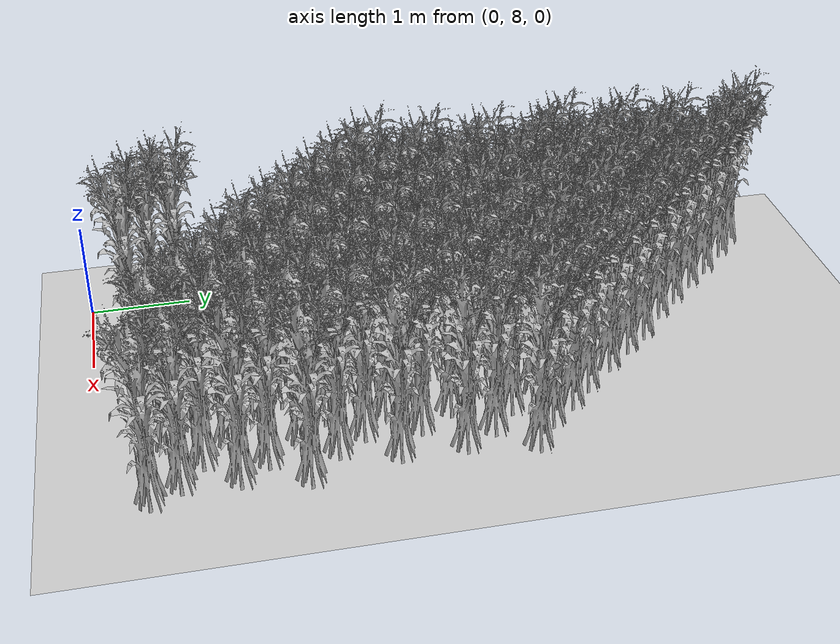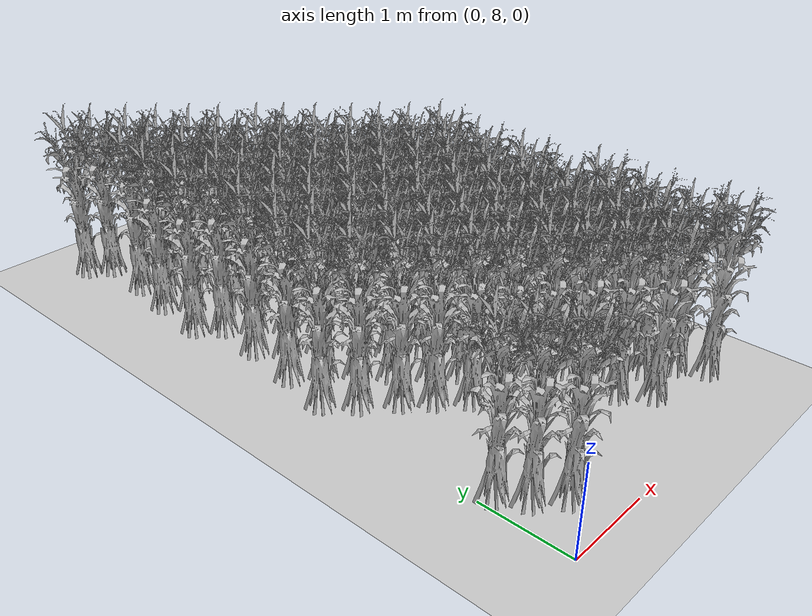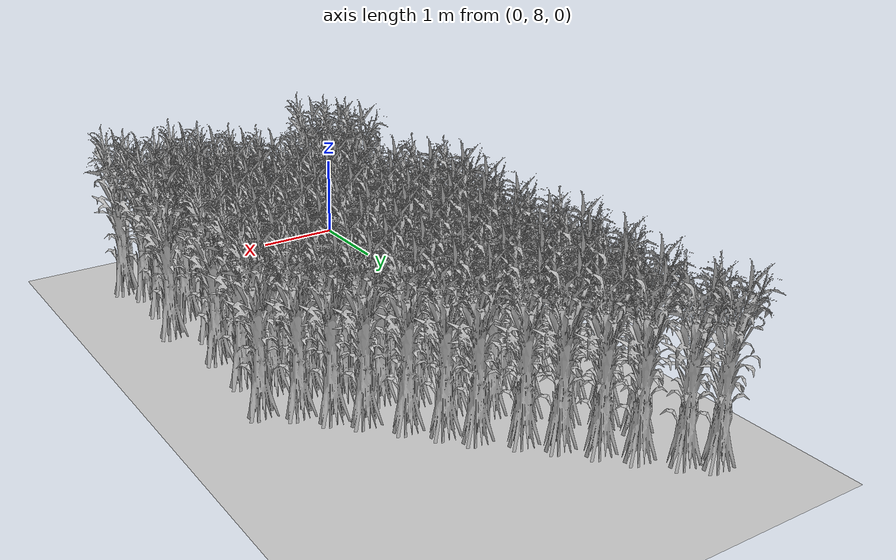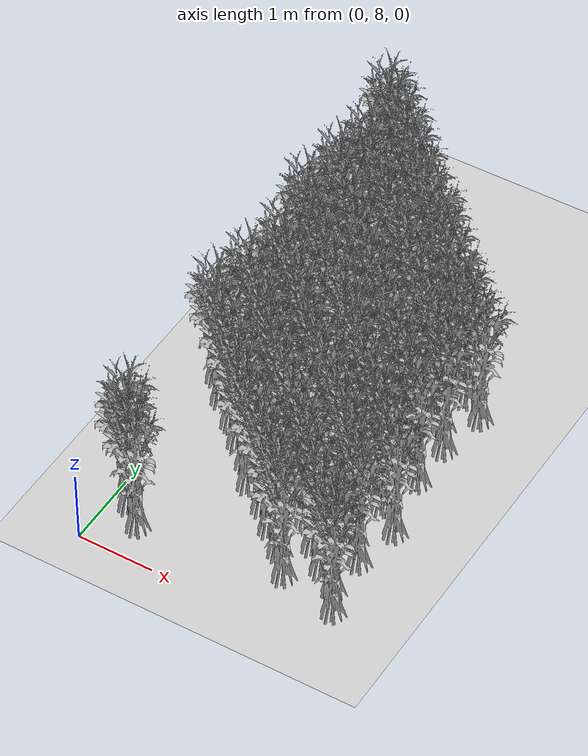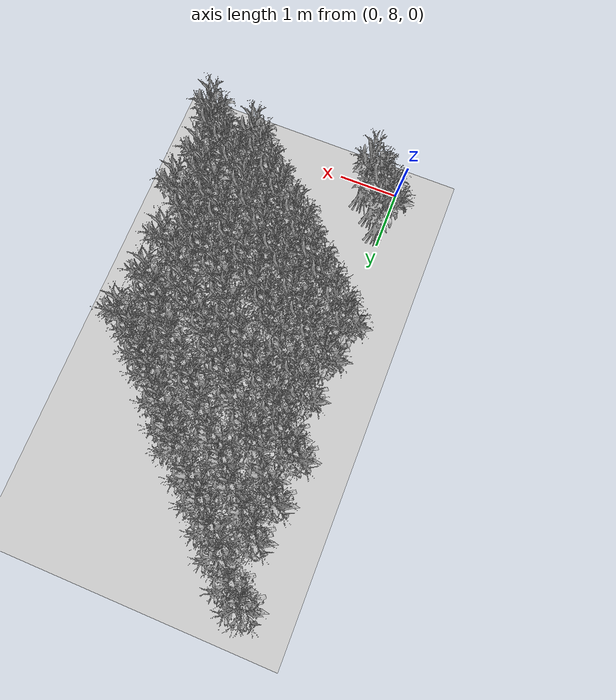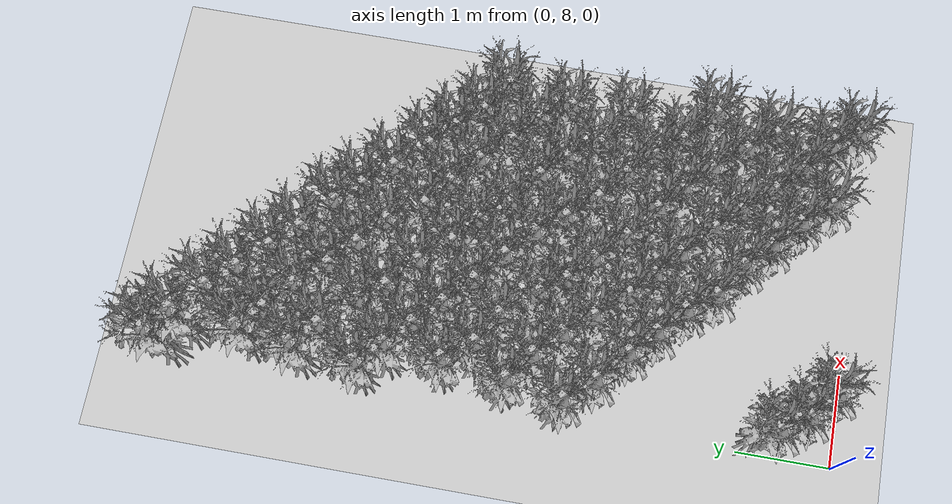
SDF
<sdf version="1.7">
 <world name="farmland_world">
  <model name="ground_plane">
   <static>1</static>
   <link name="link">
    <collision name="collision">
     <geometry><plane><normal>0 0 1</normal><size>40.0 40.0</size></plane></geometry>
     <surface><friction><ode><mu>100</mu><mu2>50</mu2></ode></friction></surface>
    </collision>
    <visual name="visual">
     <cast_shadows>0</cast_shadows>
     <geometry><plane><normal>0 0 1</normal><size>40.0 40.0</size></plane></geometry>
     <material>
      <script><uri>file://media/materials/scripts/gazebo.material</uri><name>Gazebo/Grey</name></script>
     </material>
    </visual>
   </link>
  </model>
  <model name="tree_2_105">
   <static>1</static>
   <link name="link">
    <collision name="collision">
     <geometry><mesh><uri>model://Corn/corn_5p.obj</uri><scale>1 1 1</scale></mesh></geometry>
     <surface><friction><ode><mu>100</mu><mu2>50</mu2></ode></friction></surface>
    </collision>
    <visual name="visual">
     <geometry><mesh><uri>model://Corn/corn_5p.obj</uri><scale>1 1 1</scale></mesh></geometry>
    </visual>
   </link>
   <pose>0.5451306004392127 8.413155913734837 0 0 0 0</pose>
  </model>
  <model name="tree_2_106">
   <static>1</static>
   <link name="link">
    <collision name="collision">
     <geometry><mesh><uri>model://Corn/corn_5p.obj</uri><scale>1 1 1</scale></mesh></geometry>
     <surface><friction><ode><mu>100</mu><mu2>50</mu2></ode></friction></surface>
    </collision>
    <visual name="visual">
     <geometry><mesh><uri>model://Corn/corn_5p.obj</uri><scale>1 1 1</scale></mesh></geometry>
    </visual>
   </link>
   <pose>0.2866304503400925 8.643393283350925 0 0 0 0</pose>
  </model>
  <model name="tree_2_107">
   <static>1</static>
   <link name="link">
    <collision name="collision">
     <geometry><mesh><uri>model://Corn/corn_5p.obj</uri><scale>1 1 1</scale></mesh></geometry>
     <surface><friction><ode><mu>100</mu><mu2>50</mu2></ode></friction></surface>
    </collision>
    <visual name="visual">
     <geometry><mesh><uri>model://Corn/corn_5p.obj</uri><scale>1 1 1</scale></mesh></geometry>
    </visual>
   </link>
   <pose>0.11748965823970725 8.903475811496973 0 0 0 0</pose>
  </model>
  <model name="tree_2_142">
   <static>1</static>
   <link name="link">
    <collision name="collision">
     <geometry><mesh><uri>model://Corn/corn_5p.obj</uri><scale>1 1 1</scale></mesh></geometry>
     <surface><friction><ode><mu>100</mu><mu2>50</mu2></ode></friction></surface>
    </collision>
    <visual name="visual">
     <geometry><mesh><uri>model://Corn/corn_5p.obj</uri><scale>1 1 1</scale></mesh></geometry>
    </visual>
   </link>
   <pose>2.3893309612489753 8.645324676497914 0 0 0 0</pose>
  </model>
  <model name="tree_2_143">
   <static>1</static>
   <link name="link">
    <collision name="collision">
     <geometry><mesh><uri>model://Corn/corn_5p.obj</uri><scale>1 1 1</scale></mesh></geometry>
     <surface><friction><ode><mu>100</mu><mu2>50</mu2></ode></friction></surface>
    </collision>
    <visual name="visual">
     <geometry><mesh><uri>model://Corn/corn_5p.obj</uri><scale>1 1 1</scale></mesh></geometry>
    </visual>
   </link>
   <pose>2.1480862070693543 8.933381988910929 0 0 0 0</pose>
  </model>
  <model name="tree_2_144">
   <static>1</static>
   <link name="link">
    <collision name="collision">
     <geometry><mesh><uri>model://Corn/corn_5p.obj</uri><scale>1 1 1</scale></mesh></geometry>
     <surface><friction><ode><mu>100</mu><mu2>50</mu2></ode></friction></surface>
    </collision>
    <visual name="visual">
     <geometry><mesh><uri>model://Corn/corn_5p.obj</uri><scale>1 1 1</scale></mesh></geometry>
    </visual>
   </link>
   <pose>1.86873004026248 9.18402238219949 0 0 0 0</pose>
  </model>
  <model name="tree_2_145">
   <static>1</static>
   <link name="link">
    <collision name="collision">
     <geometry><mesh><uri>model://Corn/corn_5p.obj</uri><scale>1 1 1</scale></mesh></geometry>
     <surface><friction><ode><mu>100</mu><mu2>50</mu2></ode></friction></surface>
    </collision>
    <visual name="visual">
     <geometry><mesh><uri>model://Corn/corn_5p.obj</uri><scale>1 1 1</scale></mesh></geometry>
    </visual>
   </link>
   <pose>1.6250427266683667 9.421250622798304 0 0 0 0</pose>
  </model>
  <model name="tree_2_146">
   <static>1</static>
   <link name="link">
    <collision name="collision">
     <geometry><mesh><uri>model://Corn/corn_5p.obj</uri><scale>1 1 1</scale></mesh></geometry>
     <surface><friction><ode><mu>100</mu><mu2>50</mu2></ode></friction></surface>
    </collision>
    <visual name="visual">
     <geometry><mesh><uri>model://Corn/corn_5p.obj</uri><scale>1 1 1</scale></mesh></geometry>
    </visual>
   </link>
   <pose>1.2905552577677946 9.643418633984988 0 0 0 0</pose>
  </model>
  <model name="tree_2_147">
   <static>1</static>
   <link name="link">
    <collision name="collision">
     <geometry><mesh><uri>model://Corn/corn_5p.obj</uri><scale>1 1 1</scale></mesh></geometry>
     <surface><friction><ode><mu>100</mu><mu2>50</mu2></ode></friction></surface>
    </collision>
    <visual name="visual">
     <geometry><mesh><uri>model://Corn/corn_5p.obj</uri><scale>1 1 1</scale></mesh></geometry>
    </visual>
   </link>
   <pose>1.092979240470355 9.915557564285042 0 0 0 0</pose>
  </model>
  <model name="tree_2_148">
   <static>1</static>
   <link name="link">
    <collision name="collision">
     <geometry><mesh><uri>model://Corn/corn_5p.obj</uri><scale>1 1 1</scale></mesh></geometry>
     <surface><friction><ode><mu>100</mu><mu2>50</mu2></ode></friction></surface>
    </collision>
    <visual name="visual">
     <geometry><mesh><uri>model://Corn/corn_5p.obj</uri><scale>1 1 1</scale></mesh></geometry>
    </visual>
   </link>
   <pose>0.8296226470104584 10.157863970763625 0 0 0 0</pose>
  </model>
  <model name="tree_2_149">
   <static>1</static>
   <link name="link">
    <collision name="collision">
     <geometry><mesh><uri>model://Corn/corn_5p.obj</uri><scale>1 1 1</scale></mesh></geometry>
     <surface><friction><ode><mu>100</mu><mu2>50</mu2></ode></friction></surface>
    </collision>
    <visual name="visual">
     <geometry><mesh><uri>model://Corn/corn_5p.obj</uri><scale>1 1 1</scale></mesh></geometry>
    </visual>
   </link>
   <pose>0.5886458182631902 10.392429861561423 0 0 0 0</pose>
  </model>
  <model name="tree_2_150">
   <static>1</static>
   <link name="link">
    <collision name="collision">
     <geometry><mesh><uri>model://Corn/corn_5p.obj</uri><scale>1 1 1</scale></mesh></geometry>
     <surface><friction><ode><mu>100</mu><mu2>50</mu2></ode></friction></surface>
    </collision>
    <visual name="visual">
     <geometry><mesh><uri>model://Corn/corn_5p.obj</uri><scale>1 1 1</scale></mesh></geometry>
    </visual>
   </link>
   <pose>0.28320722688652233 10.660045907979057 0 0 0 0</pose>
  </model>
  <model name="tree_2_151">
   <static>1</static>
   <link name="link">
    <collision name="collision">
     <geometry><mesh><uri>model://Corn/corn_5p.obj</uri><scale>1 1 1</scale></mesh></geometry>
     <surface><friction><ode><mu>100</mu><mu2>50</mu2></ode></friction></surface>
    </collision>
    <visual name="visual">
     <geometry><mesh><uri>model://Corn/corn_5p.obj</uri><scale>1 1 1</scale></mesh></geometry>
    </visual>
   </link>
   <pose>0.03918882164440052 10.93841121766521 0 0 0 0</pose>
  </model>
  <model name="tree_2_183">
   <static>1</static>
   <link name="link">
    <collision name="collision">
     <geometry><mesh><uri>model://Corn/corn_5p.obj</uri><scale>1 1 1</scale></mesh></geometry>
     <surface><friction><ode><mu>100</mu><mu2>50</mu2></ode></friction></surface>
    </collision>
    <visual name="visual">
     <geometry><mesh><uri>model://Corn/corn_5p.obj</uri><scale>1 1 1</scale></mesh></geometry>
    </visual>
   </link>
   <pose>3.138582212730388 9.87548474701077 0 0 0 0</pose>
  </model>
  <model name="tree_2_184">
   <static>1</static>
   <link name="link">
    <collision name="collision">
     <geometry><mesh><uri>model://Corn/corn_5p.obj</uri><scale>1 1 1</scale></mesh></geometry>
     <surface><friction><ode><mu>100</mu><mu2>50</mu2></ode></friction></surface>
    </collision>
    <visual name="visual">
     <geometry><mesh><uri>model://Corn/corn_5p.obj</uri><scale>1 1 1</scale></mesh></geometry>
    </visual>
   </link>
   <pose>2.805927723004784 10.166045099501243 0 0 0 0</pose>
  </model>
  <model name="tree_2_185">
   <static>1</static>
   <link name="link">
    <collision name="collision">
     <geometry><mesh><uri>model://Corn/corn_5p.obj</uri><scale>1 1 1</scale></mesh></geometry>
     <surface><friction><ode><mu>100</mu><mu2>50</mu2></ode></friction></surface>
    </collision>
    <visual name="visual">
     <geometry><mesh><uri>model://Corn/corn_5p.obj</uri><scale>1 1 1</scale></mesh></geometry>
    </visual>
   </link>
   <pose>2.6060294970622824 10.43197193012888 0 0 0 0</pose>
  </model>
  <model name="tree_2_186">
   <static>1</static>
   <link name="link">
    <collision name="collision">
     <geometry><mesh><uri>model://Corn/corn_5p.obj</uri><scale>1 1 1</scale></mesh></geometry>
     <surface><friction><ode><mu>100</mu><mu2>50</mu2></ode></friction></surface>
    </collision>
    <visual name="visual">
     <geometry><mesh><uri>model://Corn/corn_5p.obj</uri><scale>1 1 1</scale></mesh></geometry>
    </visual>
   </link>
   <pose>2.3492133551670844 10.671964896185303 0 0 0 0</pose>
  </model>
  <model name="tree_2_187">
   <static>1</static>
   <link name="link">
    <collision name="collision">
     <geometry><mesh><uri>model://Corn/corn_5p.obj</uri><scale>1 1 1</scale></mesh></geometry>
     <surface><friction><ode><mu>100</mu><mu2>50</mu2></ode></friction></surface>
    </collision>
    <visual name="visual">
     <geometry><mesh><uri>model://Corn/corn_5p.obj</uri><scale>1 1 1</scale></mesh></geometry>
    </visual>
   </link>
   <pose>2.0566651619806264 10.905134681210182 0 0 0 0</pose>
  </model>
  <model name="tree_2_188">
   <static>1</static>
   <link name="link">
    <collision name="collision">
     <geometry><mesh><uri>model://Corn/corn_5p.obj</uri><scale>1 1 1</scale></mesh></geometry>
     <surface><friction><ode><mu>100</mu><mu2>50</mu2></ode></friction></surface>
    </collision>
    <visual name="visual">
     <geometry><mesh><uri>model://Corn/corn_5p.obj</uri><scale>1 1 1</scale></mesh></geometry>
    </visual>
   </link>
   <pose>1.8095882617887578 11.189877716818096 0 0 0 0</pose>
  </model>
  <model name="tree_2_189">
   <static>1</static>
   <link name="link">
    <collision name="collision">
     <geometry><mesh><uri>model://Corn/corn_5p.obj</uri><scale>1 1 1</scale></mesh></geometry>
     <surface><friction><ode><mu>100</mu><mu2>50</mu2></ode></friction></surface>
    </collision>
    <visual name="visual">
     <geometry><mesh><uri>model://Corn/corn_5p.obj</uri><scale>1 1 1</scale></mesh></geometry>
    </visual>
   </link>
   <pose>1.608296019295744 11.466012617632485 0 0 0 0</pose>
  </model>
  <model name="tree_2_190">
   <static>1</static>
   <link name="link">
    <collision name="collision">
     <geometry><mesh><uri>model://Corn/corn_5p.obj</uri><scale>1 1 1</scale></mesh></geometry>
     <surface><friction><ode><mu>100</mu><mu2>50</mu2></ode></friction></surface>
    </collision>
    <visual name="visual">
     <geometry><mesh><uri>model://Corn/corn_5p.obj</uri><scale>1 1 1</scale></mesh></geometry>
    </visual>
   </link>
   <pose>1.3292762625396377 11.713045206224487 0 0 0 0</pose>
  </model>
  <model name="tree_2_191">
   <static>1</static>
   <link name="link">
    <collision name="collision">
     <geometry><mesh><uri>model://Corn/corn_5p.obj</uri><scale>1 1 1</scale></mesh></geometry>
     <surface><friction><ode><mu>100</mu><mu2>50</mu2></ode></friction></surface>
    </collision>
    <visual name="visual">
     <geometry><mesh><uri>model://Corn/corn_5p.obj</uri><scale>1 1 1</scale></mesh></geometry>
    </visual>
   </link>
   <pose>1.0303719390342554 11.961841256542696 0 0 0 0</pose>
  </model>
  <model name="tree_2_192">
   <static>1</static>
   <link name="link">
    <collision name="collision">
     <geometry><mesh><uri>model://Corn/corn_5p.obj</uri><scale>1 1 1</scale></mesh></geometry>
     <surface><friction><ode><mu>100</mu><mu2>50</mu2></ode></friction></surface>
    </collision>
    <visual name="visual">
     <geometry><mesh><uri>model://Corn/corn_5p.obj</uri><scale>1 1 1</scale></mesh></geometry>
    </visual>
   </link>
   <pose>0.7600945261133607 12.21625176568357 0 0 0 0</pose>
  </model>
  <model name="tree_2_193">
   <static>1</static>
   <link name="link">
    <collision name="collision">
     <geometry><mesh><uri>model://Corn/corn_5p.obj</uri><scale>1 1 1</scale></mesh></geometry>
     <surface><friction><ode><mu>100</mu><mu2>50</mu2></ode></friction></surface>
    </collision>
    <visual name="visual">
     <geometry><mesh><uri>model://Corn/corn_5p.obj</uri><scale>1 1 1</scale></mesh></geometry>
    </visual>
   </link>
   <pose>0.5085118740909749 12.468675855545419 0 0 0 0</pose>
  </model>
  <model name="tree_2_194">
   <static>1</static>
   <link name="link">
    <collision name="collision">
     <geometry><mesh><uri>model://Corn/corn_5p.obj</uri><scale>1 1 1</scale></mesh></geometry>
     <surface><friction><ode><mu>100</mu><mu2>50</mu2></ode></friction></surface>
    </collision>
    <visual name="visual">
     <geometry><mesh><uri>model://Corn/corn_5p.obj</uri><scale>1 1 1</scale></mesh></geometry>
    </visual>
   </link>
   <pose>0.27974398663853167 12.709994800555904 0 0 0 0</pose>
  </model>
  <model name="tree_2_195">
   <static>1</static>
   <link name="link">
    <collision name="collision">
     <geometry><mesh><uri>model://Corn/corn_5p.obj</uri><scale>1 1 1</scale></mesh></geometry>
     <surface><friction><ode><mu>100</mu><mu2>50</mu2></ode></friction></surface>
    </collision>
    <visual name="visual">
     <geometry><mesh><uri>model://Corn/corn_5p.obj</uri><scale>1 1 1</scale></mesh></geometry>
    </visual>
   </link>
   <pose>0.06284179650288524 12.947224744595983 0 0 0 0</pose>
  </model>
  <model name="tree_2_227">
   <static>1</static>
   <link name="link">
    <collision name="collision">
     <geometry><mesh><uri>model://Corn/corn_5p.obj</uri><scale>1 1 1</scale></mesh></geometry>
     <surface><friction><ode><mu>100</mu><mu2>50</mu2></ode></friction></surface>
    </collision>
    <visual name="visual">
     <geometry><mesh><uri>model://Corn/corn_5p.obj</uri><scale>1 1 1</scale></mesh></geometry>
    </visual>
   </link>
   <pose>3.087263557930743 11.962880339503178 0 0 0 0</pose>
  </model>
  <model name="tree_2_228">
   <static>1</static>
   <link name="link">
    <collision name="collision">
     <geometry><mesh><uri>model://Corn/corn_5p.obj</uri><scale>1 1 1</scale></mesh></geometry>
     <surface><friction><ode><mu>100</mu><mu2>50</mu2></ode></friction></surface>
    </collision>
    <visual name="visual">
     <geometry><mesh><uri>model://Corn/corn_5p.obj</uri><scale>1 1 1</scale></mesh></geometry>
    </visual>
   </link>
   <pose>2.7750641714558033 12.17000997842055 0 0 0 0</pose>
  </model>
  <model name="tree_2_229">
   <static>1</static>
   <link name="link">
    <collision name="collision">
     <geometry><mesh><uri>model://Corn/corn_5p.obj</uri><scale>1 1 1</scale></mesh></geometry>
     <surface><friction><ode><mu>100</mu><mu2>50</mu2></ode></friction></surface>
    </collision>
    <visual name="visual">
     <geometry><mesh><uri>model://Corn/corn_5p.obj</uri><scale>1 1 1</scale></mesh></geometry>
    </visual>
   </link>
   <pose>2.5477086496372054 12.422485271337798 0 0 0 0</pose>
  </model>
  <model name="tree_2_230">
   <static>1</static>
   <link name="link">
    <collision name="collision">
     <geometry><mesh><uri>model://Corn/corn_5p.obj</uri><scale>1 1 1</scale></mesh></geometry>
     <surface><friction><ode><mu>100</mu><mu2>50</mu2></ode></friction></surface>
    </collision>
    <visual name="visual">
     <geometry><mesh><uri>model://Corn/corn_5p.obj</uri><scale>1 1 1</scale></mesh></geometry>
    </visual>
   </link>
   <pose>2.316384151526086 12.64543309944488 0 0 0 0</pose>
  </model>
  <model name="tree_2_231">
   <static>1</static>
   <link name="link">
    <collision name="collision">
     <geometry><mesh><uri>model://Corn/corn_5p.obj</uri><scale>1 1 1</scale></mesh></geometry>
     <surface><friction><ode><mu>100</mu><mu2>50</mu2></ode></friction></surface>
    </collision>
    <visual name="visual">
     <geometry><mesh><uri>model://Corn/corn_5p.obj</uri><scale>1 1 1</scale></mesh></geometry>
    </visual>
   </link>
   <pose>2.0332695962488723 12.949585264811324 0 0 0 0</pose>
  </model>
  <model name="tree_2_232">
   <static>1</static>
   <link name="link">
    <collision name="collision">
     <geometry><mesh><uri>model://Corn/corn_5p.obj</uri><scale>1 1 1</scale></mesh></geometry>
     <surface><friction><ode><mu>100</mu><mu2>50</mu2></ode></friction></surface>
    </collision>
    <visual name="visual">
     <geometry><mesh><uri>model://Corn/corn_5p.obj</uri><scale>1 1 1</scale></mesh></geometry>
    </visual>
   </link>
   <pose>1.7890777494665102 13.21691902743428 0 0 0 0</pose>
  </model>
  <model name="tree_2_233">
   <static>1</static>
   <link name="link">
    <collision name="collision">
     <geometry><mesh><uri>model://Corn/corn_5p.obj</uri><scale>1 1 1</scale></mesh></geometry>
     <surface><friction><ode><mu>100</mu><mu2>50</mu2></ode></friction></surface>
    </collision>
    <visual name="visual">
     <geometry><mesh><uri>model://Corn/corn_5p.obj</uri><scale>1 1 1</scale></mesh></geometry>
    </visual>
   </link>
   <pose>1.585775796616899 13.456127667069646 0 0 0 0</pose>
  </model>
  <model name="tree_2_234">
   <static>1</static>
   <link name="link">
    <collision name="collision">
     <geometry><mesh><uri>model://Corn/corn_5p.obj</uri><scale>1 1 1</scale></mesh></geometry>
     <surface><friction><ode><mu>100</mu><mu2>50</mu2></ode></friction></surface>
    </collision>
    <visual name="visual">
     <geometry><mesh><uri>model://Corn/corn_5p.obj</uri><scale>1 1 1</scale></mesh></geometry>
    </visual>
   </link>
   <pose>1.255215256365381 13.730684746112615 0 0 0 0</pose>
  </model>
  <model name="tree_2_235">
   <static>1</static>
   <link name="link">
    <collision name="collision">
     <geometry><mesh><uri>model://Corn/corn_5p.obj</uri><scale>1 1 1</scale></mesh></geometry>
     <surface><friction><ode><mu>100</mu><mu2>50</mu2></ode></friction></surface>
    </collision>
    <visual name="visual">
     <geometry><mesh><uri>model://Corn/corn_5p.obj</uri><scale>1 1 1</scale></mesh></geometry>
    </visual>
   </link>
   <pose>1.0204655780444023 13.977752656100568 0 0 0 0</pose>
  </model>
  <model name="tree_2_236">
   <static>1</static>
   <link name="link">
    <collision name="collision">
     <geometry><mesh><uri>model://Corn/corn_5p.obj</uri><scale>1 1 1</scale></mesh></geometry>
     <surface><friction><ode><mu>100</mu><mu2>50</mu2></ode></friction></surface>
    </collision>
    <visual name="visual">
     <geometry><mesh><uri>model://Corn/corn_5p.obj</uri><scale>1 1 1</scale></mesh></geometry>
    </visual>
   </link>
   <pose>0.7611196716896151 14.245090564840917 0 0 0 0</pose>
  </model>
  <model name="tree_2_237">
   <static>1</static>
   <link name="link">
    <collision name="collision">
     <geometry><mesh><uri>model://Corn/corn_5p.obj</uri><scale>1 1 1</scale></mesh></geometry>
     <surface><friction><ode><mu>100</mu><mu2>50</mu2></ode></friction></surface>
    </collision>
    <visual name="visual">
     <geometry><mesh><uri>model://Corn/corn_5p.obj</uri><scale>1 1 1</scale></mesh></geometry>
    </visual>
   </link>
   <pose>0.5289425430099394 14.506062144922282 0 0 0 0</pose>
  </model>
  <model name="tree_2_238">
   <static>1</static>
   <link name="link">
    <collision name="collision">
     <geometry><mesh><uri>model://Corn/corn_5p.obj</uri><scale>1 1 1</scale></mesh></geometry>
     <surface><friction><ode><mu>100</mu><mu2>50</mu2></ode></friction></surface>
    </collision>
    <visual name="visual">
     <geometry><mesh><uri>model://Corn/corn_5p.obj</uri><scale>1 1 1</scale></mesh></geometry>
    </visual>
   </link>
   <pose>0.23950165308210125 14.787399235277851 0 0 0 0</pose>
  </model>
  <model name="tree_2_239">
   <static>1</static>
   <link name="link">
    <collision name="collision">
     <geometry><mesh><uri>model://Corn/corn_5p.obj</uri><scale>1 1 1</scale></mesh></geometry>
     <surface><friction><ode><mu>100</mu><mu2>50</mu2></ode></friction></surface>
    </collision>
    <visual name="visual">
     <geometry><mesh><uri>model://Corn/corn_5p.obj</uri><scale>1 1 1</scale></mesh></geometry>
    </visual>
   </link>
   <pose>0.015291680021347998 14.979243366065134 0 0 0 0</pose>
  </model>
  <model name="tree_2_420">
   <static>1</static>
   <link name="link">
    <collision name="collision">
     <geometry><mesh><uri>model://Corn/corn_5p.obj</uri><scale>1 1 1</scale></mesh></geometry>
     <surface><friction><ode><mu>100</mu><mu2>50</mu2></ode></friction></surface>
    </collision>
    <visual name="visual">
     <geometry><mesh><uri>model://Corn/corn_5p.obj</uri><scale>1 1 1</scale></mesh></geometry>
    </visual>
   </link>
   <pose>3.152061484104375 8.470159131334293 0 0 0 0</pose>
  </model>
  <model name="tree_2_421">
   <static>1</static>
   <link name="link">
    <collision name="collision">
     <geometry><mesh><uri>model://Corn/corn_5p.obj</uri><scale>1 1 1</scale></mesh></geometry>
     <surface><friction><ode><mu>100</mu><mu2>50</mu2></ode></friction></surface>
    </collision>
    <visual name="visual">
     <geometry><mesh><uri>model://Corn/corn_5p.obj</uri><scale>1 1 1</scale></mesh></geometry>
    </visual>
   </link>
   <pose>2.9903256156714786 8.7460025139624 0 0 0 0</pose>
  </model>
  <model name="tree_2_422">
   <static>1</static>
   <link name="link">
    <collision name="collision">
     <geometry><mesh><uri>model://Corn/corn_5p.obj</uri><scale>1 1 1</scale></mesh></geometry>
     <surface><friction><ode><mu>100</mu><mu2>50</mu2></ode></friction></surface>
    </collision>
    <visual name="visual">
     <geometry><mesh><uri>model://Corn/corn_5p.obj</uri><scale>1 1 1</scale></mesh></geometry>
    </visual>
   </link>
   <pose>2.7011669919821535 8.959653382267847 0 0 0 0</pose>
  </model>
  <model name="tree_2_423">
   <static>1</static>
   <link name="link">
    <collision name="collision">
     <geometry><mesh><uri>model://Corn/corn_5p.obj</uri><scale>1 1 1</scale></mesh></geometry>
     <surface><friction><ode><mu>100</mu><mu2>50</mu2></ode></friction></surface>
    </collision>
    <visual name="visual">
     <geometry><mesh><uri>model://Corn/corn_5p.obj</uri><scale>1 1 1</scale></mesh></geometry>
    </visual>
   </link>
   <pose>2.4428248635341987 9.206508026728468 0 0 0 0</pose>
  </model>
  <model name="tree_2_424">
   <static>1</static>
   <link name="link">
    <collision name="collision">
     <geometry><mesh><uri>model://Corn/corn_5p.obj</uri><scale>1 1 1</scale></mesh></geometry>
     <surface><friction><ode><mu>100</mu><mu2>50</mu2></ode></friction></surface>
    </collision>
    <visual name="visual">
     <geometry><mesh><uri>model://Corn/corn_5p.obj</uri><scale>1 1 1</scale></mesh></geometry>
    </visual>
   </link>
   <pose>2.170723236431452 9.515332154295923 0 0 0 0</pose>
  </model>
  <model name="tree_2_425">
   <static>1</static>
   <link name="link">
    <collision name="collision">
     <geometry><mesh><uri>model://Corn/corn_5p.obj</uri><scale>1 1 1</scale></mesh></geometry>
     <surface><friction><ode><mu>100</mu><mu2>50</mu2></ode></friction></surface>
    </collision>
    <visual name="visual">
     <geometry><mesh><uri>model://Corn/corn_5p.obj</uri><scale>1 1 1</scale></mesh></geometry>
    </visual>
   </link>
   <pose>1.950652800376561 9.745012129628083 0 0 0 0</pose>
  </model>
  <model name="tree_2_426">
   <static>1</static>
   <link name="link">
    <collision name="collision">
     <geometry><mesh><uri>model://Corn/corn_5p.obj</uri><scale>1 1 1</scale></mesh></geometry>
     <surface><friction><ode><mu>100</mu><mu2>50</mu2></ode></friction></surface>
    </collision>
    <visual name="visual">
     <geometry><mesh><uri>model://Corn/corn_5p.obj</uri><scale>1 1 1</scale></mesh></geometry>
    </visual>
   </link>
   <pose>1.6345450092276155 10.04116034221622 0 0 0 0</pose>
  </model>
  <model name="tree_2_427">
   <static>1</static>
   <link name="link">
    <collision name="collision">
     <geometry><mesh><uri>model://Corn/corn_5p.obj</uri><scale>1 1 1</scale></mesh></geometry>
     <surface><friction><ode><mu>100</mu><mu2>50</mu2></ode></friction></surface>
    </collision>
    <visual name="visual">
     <geometry><mesh><uri>model://Corn/corn_5p.obj</uri><scale>1 1 1</scale></mesh></geometry>
    </visual>
   </link>
   <pose>1.3835180380141328 10.252532907707575 0 0 0 0</pose>
  </model>
  <model name="tree_2_428">
   <static>1</static>
   <link name="link">
    <collision name="collision">
     <geometry><mesh><uri>model://Corn/corn_5p.obj</uri><scale>1 1 1</scale></mesh></geometry>
     <surface><friction><ode><mu>100</mu><mu2>50</mu2></ode></friction></surface>
    </collision>
    <visual name="visual">
     <geometry><mesh><uri>model://Corn/corn_5p.obj</uri><scale>1 1 1</scale></mesh></geometry>
    </visual>
   </link>
   <pose>1.148771947186128 10.465138238545292 0 0 0 0</pose>
  </model>
  <model name="tree_2_429">
   <static>1</static>
   <link name="link">
    <collision name="collision">
     <geometry><mesh><uri>model://Corn/corn_5p.obj</uri><scale>1 1 1</scale></mesh></geometry>
     <surface><friction><ode><mu>100</mu><mu2>50</mu2></ode></friction></surface>
    </collision>
    <visual name="visual">
     <geometry><mesh><uri>model://Corn/corn_5p.obj</uri><scale>1 1 1</scale></mesh></geometry>
    </visual>
   </link>
   <pose>0.8828262386812447 10.767753882690405 0 0 0 0</pose>
  </model>
  <model name="tree_2_430">
   <static>1</static>
   <link name="link">
    <collision name="collision">
     <geometry><mesh><uri>model://Corn/corn_5p.obj</uri><scale>1 1 1</scale></mesh></geometry>
     <surface><friction><ode><mu>100</mu><mu2>50</mu2></ode></friction></surface>
    </collision>
    <visual name="visual">
     <geometry><mesh><uri>model://Corn/corn_5p.obj</uri><scale>1 1 1</scale></mesh></geometry>
    </visual>
   </link>
   <pose>0.6666671921046576 11.04044097490761 0 0 0 0</pose>
  </model>
  <model name="tree_2_431">
   <static>1</static>
   <link name="link">
    <collision name="collision">
     <geometry><mesh><uri>model://Corn/corn_5p.obj</uri><scale>1 1 1</scale></mesh></geometry>
     <surface><friction><ode><mu>100</mu><mu2>50</mu2></ode></friction></surface>
    </collision>
    <visual name="visual">
     <geometry><mesh><uri>model://Corn/corn_5p.obj</uri><scale>1 1 1</scale></mesh></geometry>
    </visual>
   </link>
   <pose>0.4200224076690861 11.28607820714988 0 0 0 0</pose>
  </model>
  <model name="tree_2_432">
   <static>1</static>
   <link name="link">
    <collision name="collision">
     <geometry><mesh><uri>model://Corn/corn_5p.obj</uri><scale>1 1 1</scale></mesh></geometry>
     <surface><friction><ode><mu>100</mu><mu2>50</mu2></ode></friction></surface>
    </collision>
    <visual name="visual">
     <geometry><mesh><uri>model://Corn/corn_5p.obj</uri><scale>1 1 1</scale></mesh></geometry>
    </visual>
   </link>
   <pose>0.13991835391952193 11.499329871721036 0 0 0 0</pose>
  </model>
  <model name="tree_2_462">
   <static>1</static>
   <link name="link">
    <collision name="collision">
     <geometry><mesh><uri>model://Corn/corn_5p.obj</uri><scale>1 1 1</scale></mesh></geometry>
     <surface><friction><ode><mu>100</mu><mu2>50</mu2></ode></friction></surface>
    </collision>
    <visual name="visual">
     <geometry><mesh><uri>model://Corn/corn_5p.obj</uri><scale>1 1 1</scale></mesh></geometry>
    </visual>
   </link>
   <pose>3.0210580476967044 9.265324805740157 0 0 0 0</pose>
  </model>
  <model name="tree_2_463">
   <static>1</static>
   <link name="link">
    <collision name="collision">
     <geometry><mesh><uri>model://Corn/corn_5p.obj</uri><scale>1 1 1</scale></mesh></geometry>
     <surface><friction><ode><mu>100</mu><mu2>50</mu2></ode></friction></surface>
    </collision>
    <visual name="visual">
     <geometry><mesh><uri>model://Corn/corn_5p.obj</uri><scale>1 1 1</scale></mesh></geometry>
    </visual>
   </link>
   <pose>2.810612879637913 9.534198190668064 0 0 0 0</pose>
  </model>
  <model name="tree_2_464">
   <static>1</static>
   <link name="link">
    <collision name="collision">
     <geometry><mesh><uri>model://Corn/corn_5p.obj</uri><scale>1 1 1</scale></mesh></geometry>
     <surface><friction><ode><mu>100</mu><mu2>50</mu2></ode></friction></surface>
    </collision>
    <visual name="visual">
     <geometry><mesh><uri>model://Corn/corn_5p.obj</uri><scale>1 1 1</scale></mesh></geometry>
    </visual>
   </link>
   <pose>2.5580811125176406 9.855975290151822 0 0 0 0</pose>
  </model>
  <model name="tree_2_465">
   <static>1</static>
   <link name="link">
    <collision name="collision">
     <geometry><mesh><uri>model://Corn/corn_5p.obj</uri><scale>1 1 1</scale></mesh></geometry>
     <surface><friction><ode><mu>100</mu><mu2>50</mu2></ode></friction></surface>
    </collision>
    <visual name="visual">
     <geometry><mesh><uri>model://Corn/corn_5p.obj</uri><scale>1 1 1</scale></mesh></geometry>
    </visual>
   </link>
   <pose>2.29666249976588 10.107363762642493 0 0 0 0</pose>
  </model>
  <model name="tree_2_466">
   <static>1</static>
   <link name="link">
    <collision name="collision">
     <geometry><mesh><uri>model://Corn/corn_5p.obj</uri><scale>1 1 1</scale></mesh></geometry>
     <surface><friction><ode><mu>100</mu><mu2>50</mu2></ode></friction></surface>
    </collision>
    <visual name="visual">
     <geometry><mesh><uri>model://Corn/corn_5p.obj</uri><scale>1 1 1</scale></mesh></geometry>
    </visual>
   </link>
   <pose>2.051603479938067 10.319772971221173 0 0 0 0</pose>
  </model>
  <model name="tree_2_467">
   <static>1</static>
   <link name="link">
    <collision name="collision">
     <geometry><mesh><uri>model://Corn/corn_5p.obj</uri><scale>1 1 1</scale></mesh></geometry>
     <surface><friction><ode><mu>100</mu><mu2>50</mu2></ode></friction></surface>
    </collision>
    <visual name="visual">
     <geometry><mesh><uri>model://Corn/corn_5p.obj</uri><scale>1 1 1</scale></mesh></geometry>
    </visual>
   </link>
   <pose>1.7167618708328651 10.577215602308028 0 0 0 0</pose>
  </model>
  <model name="tree_2_468">
   <static>1</static>
   <link name="link">
    <collision name="collision">
     <geometry><mesh><uri>model://Corn/corn_5p.obj</uri><scale>1 1 1</scale></mesh></geometry>
     <surface><friction><ode><mu>100</mu><mu2>50</mu2></ode></friction></surface>
    </collision>
    <visual name="visual">
     <geometry><mesh><uri>model://Corn/corn_5p.obj</uri><scale>1 1 1</scale></mesh></geometry>
    </visual>
   </link>
   <pose>1.4431360264127244 10.85744844425694 0 0 0 0</pose>
  </model>
  <model name="tree_2_469">
   <static>1</static>
   <link name="link">
    <collision name="collision">
     <geometry><mesh><uri>model://Corn/corn_5p.obj</uri><scale>1 1 1</scale></mesh></geometry>
     <surface><friction><ode><mu>100</mu><mu2>50</mu2></ode></friction></surface>
    </collision>
    <visual name="visual">
     <geometry><mesh><uri>model://Corn/corn_5p.obj</uri><scale>1 1 1</scale></mesh></geometry>
    </visual>
   </link>
   <pose>1.1934259881678058 11.084198076631788 0 0 0 0</pose>
  </model>
  <model name="tree_2_470">
   <static>1</static>
   <link name="link">
    <collision name="collision">
     <geometry><mesh><uri>model://Corn/corn_5p.obj</uri><scale>1 1 1</scale></mesh></geometry>
     <surface><friction><ode><mu>100</mu><mu2>50</mu2></ode></friction></surface>
    </collision>
    <visual name="visual">
     <geometry><mesh><uri>model://Corn/corn_5p.obj</uri><scale>1 1 1</scale></mesh></geometry>
    </visual>
   </link>
   <pose>1.0165988933789862 11.320981539332452 0 0 0 0</pose>
  </model>
  <model name="tree_2_471">
   <static>1</static>
   <link name="link">
    <collision name="collision">
     <geometry><mesh><uri>model://Corn/corn_5p.obj</uri><scale>1 1 1</scale></mesh></geometry>
     <surface><friction><ode><mu>100</mu><mu2>50</mu2></ode></friction></surface>
    </collision>
    <visual name="visual">
     <geometry><mesh><uri>model://Corn/corn_5p.obj</uri><scale>1 1 1</scale></mesh></geometry>
    </visual>
   </link>
   <pose>0.7373598400533348 11.667311811710993 0 0 0 0</pose>
  </model>
  <model name="tree_2_472">
   <static>1</static>
   <link name="link">
    <collision name="collision">
     <geometry><mesh><uri>model://Corn/corn_5p.obj</uri><scale>1 1 1</scale></mesh></geometry>
     <surface><friction><ode><mu>100</mu><mu2>50</mu2></ode></friction></surface>
    </collision>
    <visual name="visual">
     <geometry><mesh><uri>model://Corn/corn_5p.obj</uri><scale>1 1 1</scale></mesh></geometry>
    </visual>
   </link>
   <pose>0.42903364270957434 11.847844683871871 0 0 0 0</pose>
  </model>
  <model name="tree_2_473">
   <static>1</static>
   <link name="link">
    <collision name="collision">
     <geometry><mesh><uri>model://Corn/corn_5p.obj</uri><scale>1 1 1</scale></mesh></geometry>
     <surface><friction><ode><mu>100</mu><mu2>50</mu2></ode></friction></surface>
    </collision>
    <visual name="visual">
     <geometry><mesh><uri>model://Corn/corn_5p.obj</uri><scale>1 1 1</scale></mesh></geometry>
    </visual>
   </link>
   <pose>0.22592230960324738 12.135718465543723 0 0 0 0</pose>
  </model>
  <model name="tree_2_505">
   <static>1</static>
   <link name="link">
    <collision name="collision">
     <geometry><mesh><uri>model://Corn/corn_5p.obj</uri><scale>1 1 1</scale></mesh></geometry>
     <surface><friction><ode><mu>100</mu><mu2>50</mu2></ode></friction></surface>
    </collision>
    <visual name="visual">
     <geometry><mesh><uri>model://Corn/corn_5p.obj</uri><scale>1 1 1</scale></mesh></geometry>
    </visual>
   </link>
   <pose>2.96807778304266 10.706010519771505 0 0 0 0</pose>
  </model>
  <model name="tree_2_506">
   <static>1</static>
   <link name="link">
    <collision name="collision">
     <geometry><mesh><uri>model://Corn/corn_5p.obj</uri><scale>1 1 1</scale></mesh></geometry>
     <surface><friction><ode><mu>100</mu><mu2>50</mu2></ode></friction></surface>
    </collision>
    <visual name="visual">
     <geometry><mesh><uri>model://Corn/corn_5p.obj</uri><scale>1 1 1</scale></mesh></geometry>
    </visual>
   </link>
   <pose>2.625630929804285 10.95868751443067 0 0 0 0</pose>
  </model>
  <model name="tree_2_507">
   <static>1</static>
   <link name="link">
    <collision name="collision">
     <geometry><mesh><uri>model://Corn/corn_5p.obj</uri><scale>1 1 1</scale></mesh></geometry>
     <surface><friction><ode><mu>100</mu><mu2>50</mu2></ode></friction></surface>
    </collision>
    <visual name="visual">
     <geometry><mesh><uri>model://Corn/corn_5p.obj</uri><scale>1 1 1</scale></mesh></geometry>
    </visual>
   </link>
   <pose>2.417587840571904 11.28135697639464 0 0 0 0</pose>
  </model>
  <model name="tree_2_508">
   <static>1</static>
   <link name="link">
    <collision name="collision">
     <geometry><mesh><uri>model://Corn/corn_5p.obj</uri><scale>1 1 1</scale></mesh></geometry>
     <surface><friction><ode><mu>100</mu><mu2>50</mu2></ode></friction></surface>
    </collision>
    <visual name="visual">
     <geometry><mesh><uri>model://Corn/corn_5p.obj</uri><scale>1 1 1</scale></mesh></geometry>
    </visual>
   </link>
   <pose>2.191644624807726 11.509121864694439 0 0 0 0</pose>
  </model>
  <model name="tree_2_509">
   <static>1</static>
   <link name="link">
    <collision name="collision">
     <geometry><mesh><uri>model://Corn/corn_5p.obj</uri><scale>1 1 1</scale></mesh></geometry>
     <surface><friction><ode><mu>100</mu><mu2>50</mu2></ode></friction></surface>
    </collision>
    <visual name="visual">
     <geometry><mesh><uri>model://Corn/corn_5p.obj</uri><scale>1 1 1</scale></mesh></geometry>
    </visual>
   </link>
   <pose>1.8553555435125586 11.7449942484719 0 0 0 0</pose>
  </model>
  <model name="tree_2_510">
   <static>1</static>
   <link name="link">
    <collision name="collision">
     <geometry><mesh><uri>model://Corn/corn_5p.obj</uri><scale>1 1 1</scale></mesh></geometry>
     <surface><friction><ode><mu>100</mu><mu2>50</mu2></ode></friction></surface>
    </collision>
    <visual name="visual">
     <geometry><mesh><uri>model://Corn/corn_5p.obj</uri><scale>1 1 1</scale></mesh></geometry>
    </visual>
   </link>
   <pose>1.6387388827110339 12.034446015434394 0 0 0 0</pose>
  </model>
  <model name="tree_2_511">
   <static>1</static>
   <link name="link">
    <collision name="collision">
     <geometry><mesh><uri>model://Corn/corn_5p.obj</uri><scale>1 1 1</scale></mesh></geometry>
     <surface><friction><ode><mu>100</mu><mu2>50</mu2></ode></friction></surface>
    </collision>
    <visual name="visual">
     <geometry><mesh><uri>model://Corn/corn_5p.obj</uri><scale>1 1 1</scale></mesh></geometry>
    </visual>
   </link>
   <pose>1.3704747461897815 12.237531558447388 0 0 0 0</pose>
  </model>
  <model name="tree_2_512">
   <static>1</static>
   <link name="link">
    <collision name="collision">
     <geometry><mesh><uri>model://Corn/corn_5p.obj</uri><scale>1 1 1</scale></mesh></geometry>
     <surface><friction><ode><mu>100</mu><mu2>50</mu2></ode></friction></surface>
    </collision>
    <visual name="visual">
     <geometry><mesh><uri>model://Corn/corn_5p.obj</uri><scale>1 1 1</scale></mesh></geometry>
    </visual>
   </link>
   <pose>1.1310781908041019 12.532564147920148 0 0 0 0</pose>
  </model>
  <model name="tree_2_513">
   <static>1</static>
   <link name="link">
    <collision name="collision">
     <geometry><mesh><uri>model://Corn/corn_5p.obj</uri><scale>1 1 1</scale></mesh></geometry>
     <surface><friction><ode><mu>100</mu><mu2>50</mu2></ode></friction></surface>
    </collision>
    <visual name="visual">
     <geometry><mesh><uri>model://Corn/corn_5p.obj</uri><scale>1 1 1</scale></mesh></geometry>
    </visual>
   </link>
   <pose>0.8245745978652054 12.788362971984505 0 0 0 0</pose>
  </model>
  <model name="tree_2_514">
   <static>1</static>
   <link name="link">
    <collision name="collision">
     <geometry><mesh><uri>model://Corn/corn_5p.obj</uri><scale>1 1 1</scale></mesh></geometry>
     <surface><friction><ode><mu>100</mu><mu2>50</mu2></ode></friction></surface>
    </collision>
    <visual name="visual">
     <geometry><mesh><uri>model://Corn/corn_5p.obj</uri><scale>1 1 1</scale></mesh></geometry>
    </visual>
   </link>
   <pose>0.6596380546833618 13.019322638920482 0 0 0 0</pose>
  </model>
  <model name="tree_2_515">
   <static>1</static>
   <link name="link">
    <collision name="collision">
     <geometry><mesh><uri>model://Corn/corn_5p.obj</uri><scale>1 1 1</scale></mesh></geometry>
     <surface><friction><ode><mu>100</mu><mu2>50</mu2></ode></friction></surface>
    </collision>
    <visual name="visual">
     <geometry><mesh><uri>model://Corn/corn_5p.obj</uri><scale>1 1 1</scale></mesh></geometry>
    </visual>
   </link>
   <pose>0.34028014092138603 13.352773586218671 0 0 0 0</pose>
  </model>
  <model name="tree_2_516">
   <static>1</static>
   <link name="link">
    <collision name="collision">
     <geometry><mesh><uri>model://Corn/corn_5p.obj</uri><scale>1 1 1</scale></mesh></geometry>
     <surface><friction><ode><mu>100</mu><mu2>50</mu2></ode></friction></surface>
    </collision>
    <visual name="visual">
     <geometry><mesh><uri>model://Corn/corn_5p.obj</uri><scale>1 1 1</scale></mesh></geometry>
    </visual>
   </link>
   <pose>0.12896629320013142 13.601073129246515 0 0 0 0</pose>
  </model>
  <model name="tree_2_546">
   <static>1</static>
   <link name="link">
    <collision name="collision">
     <geometry><mesh><uri>model://Corn/corn_5p.obj</uri><scale>1 1 1</scale></mesh></geometry>
     <surface><friction><ode><mu>100</mu><mu2>50</mu2></ode></friction></surface>
    </collision>
    <visual name="visual">
     <geometry><mesh><uri>model://Corn/corn_5p.obj</uri><scale>1 1 1</scale></mesh></geometry>
    </visual>
   </link>
   <pose>2.9668660998807495 11.314143557296836 0 0 0 0</pose>
  </model>
  <model name="tree_2_547">
   <static>1</static>
   <link name="link">
    <collision name="collision">
     <geometry><mesh><uri>model://Corn/corn_5p.obj</uri><scale>1 1 1</scale></mesh></geometry>
     <surface><friction><ode><mu>100</mu><mu2>50</mu2></ode></friction></surface>
    </collision>
    <visual name="visual">
     <geometry><mesh><uri>model://Corn/corn_5p.obj</uri><scale>1 1 1</scale></mesh></geometry>
    </visual>
   </link>
   <pose>2.7766159281186606 11.620399395977913 0 0 0 0</pose>
  </model>
  <model name="tree_2_548">
   <static>1</static>
   <link name="link">
    <collision name="collision">
     <geometry><mesh><uri>model://Corn/corn_5p.obj</uri><scale>1 1 1</scale></mesh></geometry>
     <surface><friction><ode><mu>100</mu><mu2>50</mu2></ode></friction></surface>
    </collision>
    <visual name="visual">
     <geometry><mesh><uri>model://Corn/corn_5p.obj</uri><scale>1 1 1</scale></mesh></geometry>
    </visual>
   </link>
   <pose>2.5042518462938395 11.844812243883759 0 0 0 0</pose>
  </model>
  <model name="tree_2_549">
   <static>1</static>
   <link name="link">
    <collision name="collision">
     <geometry><mesh><uri>model://Corn/corn_5p.obj</uri><scale>1 1 1</scale></mesh></geometry>
     <surface><friction><ode><mu>100</mu><mu2>50</mu2></ode></friction></surface>
    </collision>
    <visual name="visual">
     <geometry><mesh><uri>model://Corn/corn_5p.obj</uri><scale>1 1 1</scale></mesh></geometry>
    </visual>
   </link>
   <pose>2.2489706054082856 12.126913251986004 0 0 0 0</pose>
  </model>
  <model name="tree_2_550">
   <static>1</static>
   <link name="link">
    <collision name="collision">
     <geometry><mesh><uri>model://Corn/corn_5p.obj</uri><scale>1 1 1</scale></mesh></geometry>
     <surface><friction><ode><mu>100</mu><mu2>50</mu2></ode></friction></surface>
    </collision>
    <visual name="visual">
     <geometry><mesh><uri>model://Corn/corn_5p.obj</uri><scale>1 1 1</scale></mesh></geometry>
    </visual>
   </link>
   <pose>1.9682475873295102 12.367271358576016 0 0 0 0</pose>
  </model>
  <model name="tree_2_551">
   <static>1</static>
   <link name="link">
    <collision name="collision">
     <geometry><mesh><uri>model://Corn/corn_5p.obj</uri><scale>1 1 1</scale></mesh></geometry>
     <surface><friction><ode><mu>100</mu><mu2>50</mu2></ode></friction></surface>
    </collision>
    <visual name="visual">
     <geometry><mesh><uri>model://Corn/corn_5p.obj</uri><scale>1 1 1</scale></mesh></geometry>
    </visual>
   </link>
   <pose>1.6930794091729622 12.569688769715123 0 0 0 0</pose>
  </model>
  <model name="tree_2_552">
   <static>1</static>
   <link name="link">
    <collision name="collision">
     <geometry><mesh><uri>model://Corn/corn_5p.obj</uri><scale>1 1 1</scale></mesh></geometry>
     <surface><friction><ode><mu>100</mu><mu2>50</mu2></ode></friction></surface>
    </collision>
    <visual name="visual">
     <geometry><mesh><uri>model://Corn/corn_5p.obj</uri><scale>1 1 1</scale></mesh></geometry>
    </visual>
   </link>
   <pose>1.4786061853946306 12.911408847046909 0 0 0 0</pose>
  </model>
  <model name="tree_2_553">
   <static>1</static>
   <link name="link">
    <collision name="collision">
     <geometry><mesh><uri>model://Corn/corn_5p.obj</uri><scale>1 1 1</scale></mesh></geometry>
     <surface><friction><ode><mu>100</mu><mu2>50</mu2></ode></friction></surface>
    </collision>
    <visual name="visual">
     <geometry><mesh><uri>model://Corn/corn_5p.obj</uri><scale>1 1 1</scale></mesh></geometry>
    </visual>
   </link>
   <pose>1.196166169654464 13.149247651198074 0 0 0 0</pose>
  </model>
  <model name="tree_2_554">
   <static>1</static>
   <link name="link">
    <collision name="collision">
     <geometry><mesh><uri>model://Corn/corn_5p.obj</uri><scale>1 1 1</scale></mesh></geometry>
     <surface><friction><ode><mu>100</mu><mu2>50</mu2></ode></friction></surface>
    </collision>
    <visual name="visual">
     <geometry><mesh><uri>model://Corn/corn_5p.obj</uri><scale>1 1 1</scale></mesh></geometry>
    </visual>
   </link>
   <pose>0.9351445698077849 13.378959978269847 0 0 0 0</pose>
  </model>
  <model name="tree_2_555">
   <static>1</static>
   <link name="link">
    <collision name="collision">
     <geometry><mesh><uri>model://Corn/corn_5p.obj</uri><scale>1 1 1</scale></mesh></geometry>
     <surface><friction><ode><mu>100</mu><mu2>50</mu2></ode></friction></surface>
    </collision>
    <visual name="visual">
     <geometry><mesh><uri>model://Corn/corn_5p.obj</uri><scale>1 1 1</scale></mesh></geometry>
    </visual>
   </link>
   <pose>0.6999639592571518 13.664442824966727 0 0 0 0</pose>
  </model>
  <model name="tree_2_556">
   <static>1</static>
   <link name="link">
    <collision name="collision">
     <geometry><mesh><uri>model://Corn/corn_5p.obj</uri><scale>1 1 1</scale></mesh></geometry>
     <surface><friction><ode><mu>100</mu><mu2>50</mu2></ode></friction></surface>
    </collision>
    <visual name="visual">
     <geometry><mesh><uri>model://Corn/corn_5p.obj</uri><scale>1 1 1</scale></mesh></geometry>
    </visual>
   </link>
   <pose>0.4033742584855233 13.897388729208858 0 0 0 0</pose>
  </model>
  <model name="tree_2_557">
   <static>1</static>
   <link name="link">
    <collision name="collision">
     <geometry><mesh><uri>model://Corn/corn_5p.obj</uri><scale>1 1 1</scale></mesh></geometry>
     <surface><friction><ode><mu>100</mu><mu2>50</mu2></ode></friction></surface>
    </collision>
    <visual name="visual">
     <geometry><mesh><uri>model://Corn/corn_5p.obj</uri><scale>1 1 1</scale></mesh></geometry>
    </visual>
   </link>
   <pose>0.21123554447589485 14.147465465465865 0 0 0 0</pose>
  </model>
 </world>
</sdf>
